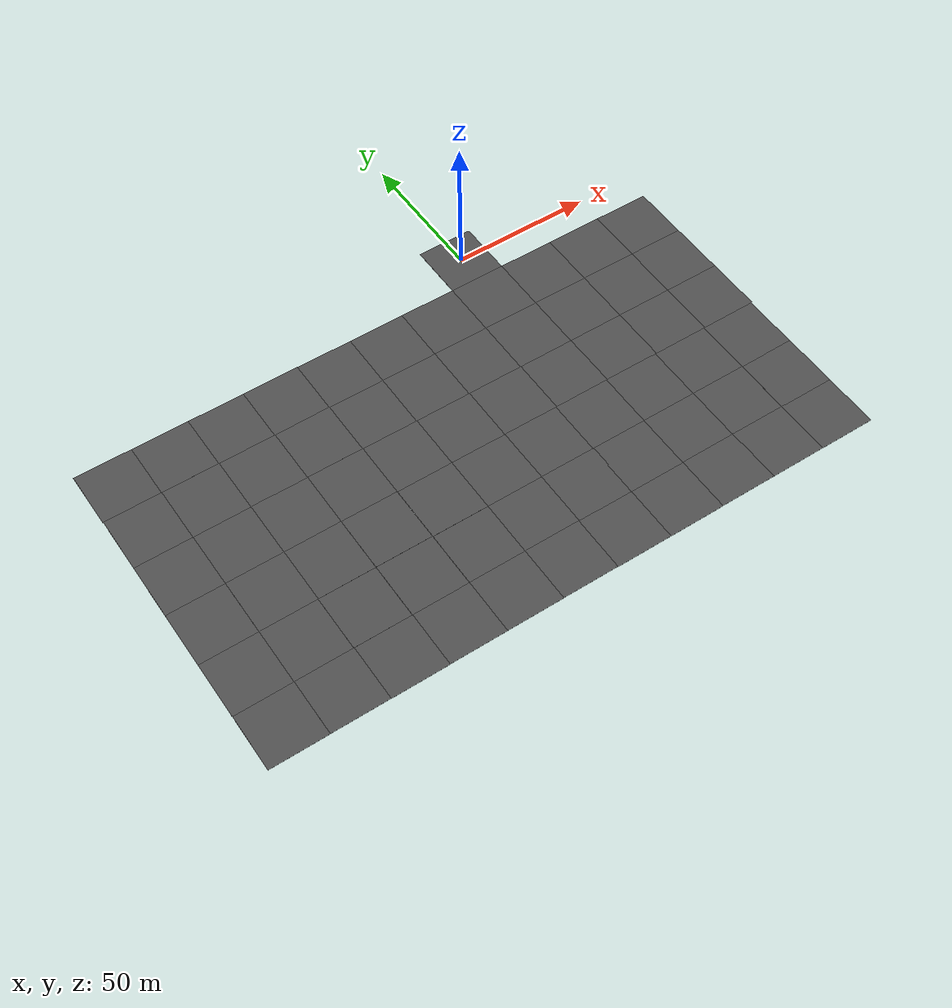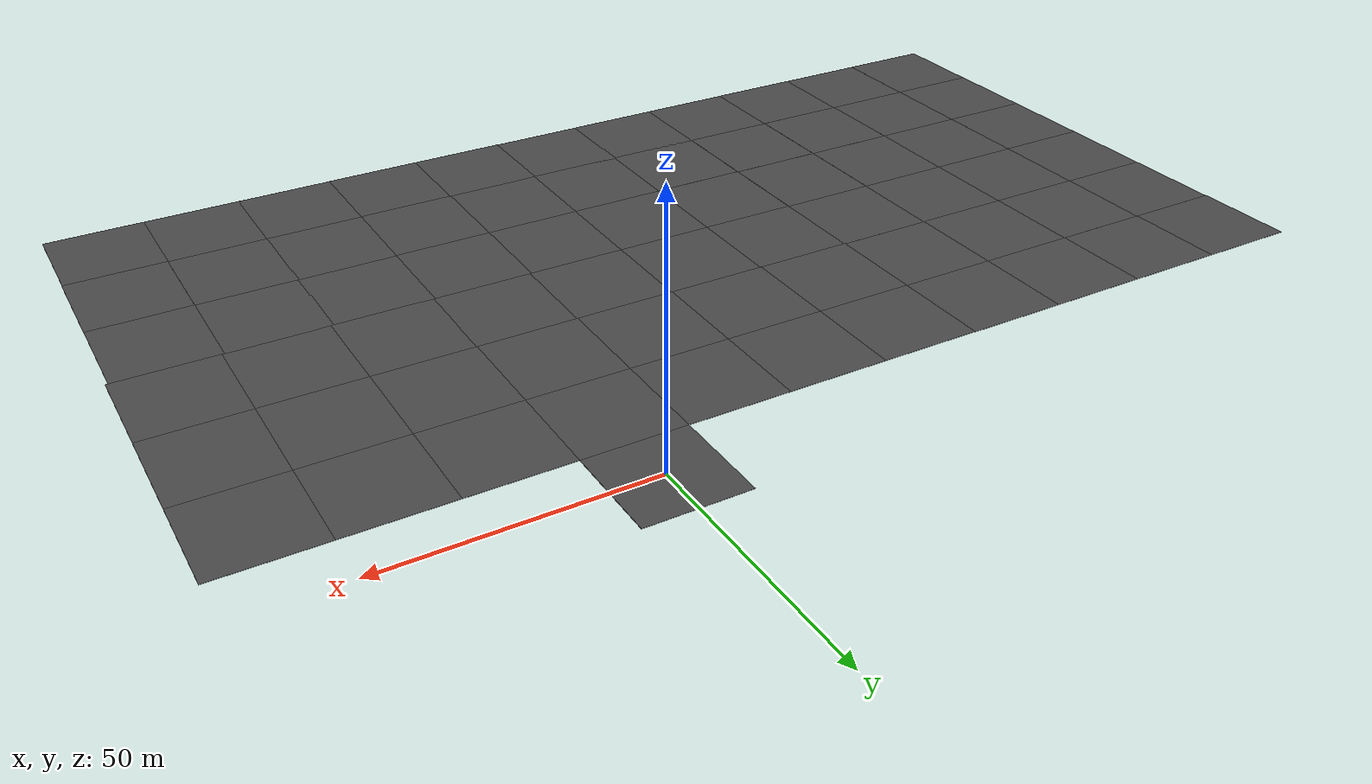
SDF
<sdf version="1.7">
 <world name="default">
  <model name="asphalt_plane">
   <static>1</static>
   <link name="link">
    <collision name="collision"><geometry><box><size>20 20 0.1</size></box></geometry></collision>
    <visual name="visual">
     <cast_shadows>0</cast_shadows>
     <geometry><box><size>20 20 0.1</size></box></geometry>
     <material>
      <script>
       <uri>model://asphalt_plane/materials/scripts</uri>
       <uri>model://asphalt_plane/materials/textures</uri>
       <name>vrc/asphalt</name>
      </script>
     </material>
    </visual>
   </link>
  </model>
  <model name="asphalt_plane_4">
   <static>1</static>
   <link name="link">
    <collision name="collision"><geometry><box><size>20 20 0.1</size></box></geometry></collision>
    <visual name="visual">
     <cast_shadows>0</cast_shadows>
     <geometry><box><size>20 20 0.1</size></box></geometry>
     <material>
      <script>
       <uri>model://asphalt_plane/materials/scripts</uri>
       <uri>model://asphalt_plane/materials/textures</uri>
       <name>vrc/asphalt</name>
      </script>
     </material>
    </visual>
   </link>
   <pose>0 -20 0 0 -0 0</pose>
  </model>
  <model name="asphalt_plane_5">
   <static>1</static>
   <link name="link">
    <collision name="collision"><geometry><box><size>20 20 0.1</size></box></geometry></collision>
    <visual name="visual">
     <cast_shadows>0</cast_shadows>
     <geometry><box><size>20 20 0.1</size></box></geometry>
     <material>
      <script>
       <uri>model://asphalt_plane/materials/scripts</uri>
       <uri>model://asphalt_plane/materials/textures</uri>
       <name>vrc/asphalt</name>
      </script>
     </material>
    </visual>
   </link>
   <pose>-20 -20 0 0 -0 0</pose>
  </model>
  <model name="asphalt_plane_6">
   <static>1</static>
   <link name="link">
    <collision name="collision"><geometry><box><size>20 20 0.1</size></box></geometry></collision>
    <visual name="visual">
     <cast_shadows>0</cast_shadows>
     <geometry><box><size>20 20 0.1</size></box></geometry>
     <material>
      <script>
       <uri>model://asphalt_plane/materials/scripts</uri>
       <uri>model://asphalt_plane/materials/textures</uri>
       <name>vrc/asphalt</name>
      </script>
     </material>
    </visual>
   </link>
   <pose>-40 -20 0 0 -0 0</pose>
  </model>
  <model name="asphalt_plane_7">
   <static>1</static>
   <link name="link">
    <collision name="collision"><geometry><box><size>20 20 0.1</size></box></geometry></collision>
    <visual name="visual">
     <cast_shadows>0</cast_shadows>
     <geometry><box><size>20 20 0.1</size></box></geometry>
     <material>
      <script>
       <uri>model://asphalt_plane/materials/scripts</uri>
       <uri>model://asphalt_plane/materials/textures</uri>
       <name>vrc/asphalt</name>
      </script>
     </material>
    </visual>
   </link>
   <pose>20 -20 0 0 -0 0</pose>
  </model>
  <model name="asphalt_plane_8">
   <static>1</static>
   <link name="link">
    <collision name="collision"><geometry><box><size>20 20 0.1</size></box></geometry></collision>
    <visual name="visual">
     <cast_shadows>0</cast_shadows>
     <geometry><box><size>20 20 0.1</size></box></geometry>
     <material>
      <script>
       <uri>model://asphalt_plane/materials/scripts</uri>
       <uri>model://asphalt_plane/materials/textures</uri>
       <name>vrc/asphalt</name>
      </script>
     </material>
    </visual>
   </link>
   <pose>40 -20 0 0 -0 0</pose>
  </model>
  <model name="asphalt_plane_16">
   <static>1</static>
   <link name="link">
    <collision name="collision"><geometry><box><size>20 20 0.1</size></box></geometry></collision>
    <visual name="visual">
     <cast_shadows>0</cast_shadows>
     <geometry><box><size>20 20 0.1</size></box></geometry>
     <material>
      <script>
       <uri>model://asphalt_plane/materials/scripts</uri>
       <uri>model://asphalt_plane/materials/textures</uri>
       <name>vrc/asphalt</name>
      </script>
     </material>
    </visual>
   </link>
   <pose>60 -20 0 0 -0 0</pose>
  </model>
  <model name="asphalt_plane_17">
   <static>1</static>
   <link name="link">
    <collision name="collision"><geometry><box><size>20 20 0.1</size></box></geometry></collision>
    <visual name="visual">
     <cast_shadows>0</cast_shadows>
     <geometry><box><size>20 20 0.1</size></box></geometry>
     <material>
      <script>
       <uri>model://asphalt_plane/materials/scripts</uri>
       <uri>model://asphalt_plane/materials/textures</uri>
       <name>vrc/asphalt</name>
      </script>
     </material>
    </visual>
   </link>
   <pose>40 -40 0 0 -0 0</pose>
  </model>
  <model name="asphalt_plane_18">
   <static>1</static>
   <link name="link">
    <collision name="collision"><geometry><box><size>20 20 0.1</size></box></geometry></collision>
    <visual name="visual">
     <cast_shadows>0</cast_shadows>
     <geometry><box><size>20 20 0.1</size></box></geometry>
     <material>
      <script>
       <uri>model://asphalt_plane/materials/scripts</uri>
       <uri>model://asphalt_plane/materials/textures</uri>
       <name>vrc/asphalt</name>
      </script>
     </material>
    </visual>
   </link>
   <pose>60 -40 0 0 -0 0</pose>
  </model>
  <model name="asphalt_plane_19">
   <static>1</static>
   <link name="link">
    <collision name="collision"><geometry><box><size>20 20 0.1</size></box></geometry></collision>
    <visual name="visual">
     <cast_shadows>0</cast_shadows>
     <geometry><box><size>20 20 0.1</size></box></geometry>
     <material>
      <script>
       <uri>model://asphalt_plane/materials/scripts</uri>
       <uri>model://asphalt_plane/materials/textures</uri>
       <name>vrc/asphalt</name>
      </script>
     </material>
    </visual>
   </link>
   <pose>20 -40 0 0 -0 0</pose>
  </model>
  <model name="asphalt_plane_20">
   <static>1</static>
   <link name="link">
    <collision name="collision"><geometry><box><size>20 20 0.1</size></box></geometry></collision>
    <visual name="visual">
     <cast_shadows>0</cast_shadows>
     <geometry><box><size>20 20 0.1</size></box></geometry>
     <material>
      <script>
       <uri>model://asphalt_plane/materials/scripts</uri>
       <uri>model://asphalt_plane/materials/textures</uri>
       <name>vrc/asphalt</name>
      </script>
     </material>
    </visual>
   </link>
   <pose>0 -40 0 0 -0 0</pose>
  </model>
  <model name="asphalt_plane_21">
   <static>1</static>
   <link name="link">
    <collision name="collision"><geometry><box><size>20 20 0.1</size></box></geometry></collision>
    <visual name="visual">
     <cast_shadows>0</cast_shadows>
     <geometry><box><size>20 20 0.1</size></box></geometry>
     <material>
      <script>
       <uri>model://asphalt_plane/materials/scripts</uri>
       <uri>model://asphalt_plane/materials/textures</uri>
       <name>vrc/asphalt</name>
      </script>
     </material>
    </visual>
   </link>
   <pose>-20 -40 0 0 -0 0</pose>
  </model>
  <model name="asphalt_plane_22">
   <static>1</static>
   <link name="link">
    <collision name="collision"><geometry><box><size>20 20 0.1</size></box></geometry></collision>
    <visual name="visual">
     <cast_shadows>0</cast_shadows>
     <geometry><box><size>20 20 0.1</size></box></geometry>
     <material>
      <script>
       <uri>model://asphalt_plane/materials/scripts</uri>
       <uri>model://asphalt_plane/materials/textures</uri>
       <name>vrc/asphalt</name>
      </script>
     </material>
    </visual>
   </link>
   <pose>-40 -40 0 0 -0 0</pose>
  </model>
  <model name="asphalt_plane_23">
   <static>1</static>
   <link name="link">
    <collision name="collision"><geometry><box><size>20 20 0.1</size></box></geometry></collision>
    <visual name="visual">
     <cast_shadows>0</cast_shadows>
     <geometry><box><size>20 20 0.1</size></box></geometry>
     <material>
      <script>
       <uri>model://asphalt_plane/materials/scripts</uri>
       <uri>model://asphalt_plane/materials/textures</uri>
       <name>vrc/asphalt</name>
      </script>
     </material>
    </visual>
   </link>
   <pose>-60 -40 0 0 -0 0</pose>
  </model>
  <model name="asphalt_plane_24">
   <static>1</static>
   <link name="link">
    <collision name="collision"><geometry><box><size>20 20 0.1</size></box></geometry></collision>
    <visual name="visual">
     <cast_shadows>0</cast_shadows>
     <geometry><box><size>20 20 0.1</size></box></geometry>
     <material>
      <script>
       <uri>model://asphalt_plane/materials/scripts</uri>
       <uri>model://asphalt_plane/materials/textures</uri>
       <name>vrc/asphalt</name>
      </script>
     </material>
    </visual>
   </link>
   <pose>-60 -20 0 0 -0 0</pose>
  </model>
  <model name="asphalt_plane_18_clone">
   <static>1</static>
   <link name="link">
    <collision name="collision"><geometry><box><size>20 20 0.1</size></box></geometry></collision>
    <visual name="visual">
     <cast_shadows>0</cast_shadows>
     <geometry><box><size>20 20 0.1</size></box></geometry>
     <material>
      <script>
       <uri>model://asphalt_plane/materials/scripts</uri>
       <uri>model://asphalt_plane/materials/textures</uri>
       <name>vrc/asphalt</name>
      </script>
     </material>
    </visual>
   </link>
   <pose>59.9964 -59.9875 0 0 -0 0</pose>
  </model>
  <model name="asphalt_plane_23_clone">
   <static>1</static>
   <link name="link">
    <collision name="collision"><geometry><box><size>20 20 0.1</size></box></geometry></collision>
    <visual name="visual">
     <cast_shadows>0</cast_shadows>
     <geometry><box><size>20 20 0.1</size></box></geometry>
     <material>
      <script>
       <uri>model://asphalt_plane/materials/scripts</uri>
       <uri>model://asphalt_plane/materials/textures</uri>
       <name>vrc/asphalt</name>
      </script>
     </material>
    </visual>
   </link>
   <pose>40.0178 -59.9822 0 0 -0 0</pose>
  </model>
  <model name="asphalt_plane_23_clone_0">
   <static>1</static>
   <link name="link">
    <collision name="collision"><geometry><box><size>20 20 0.1</size></box></geometry></collision>
    <visual name="visual">
     <cast_shadows>0</cast_shadows>
     <geometry><box><size>20 20 0.1</size></box></geometry>
     <material>
      <script>
       <uri>model://asphalt_plane/materials/scripts</uri>
       <uri>model://asphalt_plane/materials/textures</uri>
       <name>vrc/asphalt</name>
      </script>
     </material>
    </visual>
   </link>
   <pose>20.0657 -59.997 0 0 -0 0</pose>
  </model>
  <model name="asphalt_plane_27_clone_1_clone_1_clone_clone_2">
   <static>1</static>
   <link name="link">
    <collision name="collision"><geometry><box><size>20 20 0.1</size></box></geometry></collision>
    <visual name="visual">
     <cast_shadows>0</cast_shadows>
     <geometry><box><size>20 20 0.1</size></box></geometry>
     <material>
      <script>
       <uri>model://asphalt_plane/materials/scripts</uri>
       <uri>model://asphalt_plane/materials/textures</uri>
       <name>vrc/asphalt</name>
      </script>
     </material>
    </visual>
   </link>
   <pose>-139.882 -19.9008 0 0 -0 0</pose>
  </model>
  <model name="asphalt_plane_27_clone_1_clone_1_clone_clone_3">
   <static>1</static>
   <link name="link">
    <collision name="collision"><geometry><box><size>20 20 0.1</size></box></geometry></collision>
    <visual name="visual">
     <cast_shadows>0</cast_shadows>
     <geometry><box><size>20 20 0.1</size></box></geometry>
     <material>
      <script>
       <uri>model://asphalt_plane/materials/scripts</uri>
       <uri>model://asphalt_plane/materials/textures</uri>
       <name>vrc/asphalt</name>
      </script>
     </material>
    </visual>
   </link>
   <pose>-119.902 -19.9114 0 0 -0 0</pose>
  </model>
  <model name="asphalt_plane_27_clone_1_clone_1_clone_clone_4">
   <static>1</static>
   <link name="link">
    <collision name="collision"><geometry><box><size>20 20 0.1</size></box></geometry></collision>
    <visual name="visual">
     <cast_shadows>0</cast_shadows>
     <geometry><box><size>20 20 0.1</size></box></geometry>
     <material>
      <script>
       <uri>model://asphalt_plane/materials/scripts</uri>
       <uri>model://asphalt_plane/materials/textures</uri>
       <name>vrc/asphalt</name>
      </script>
     </material>
    </visual>
   </link>
   <pose>-99.9041 -19.9218 0 0 -0 0</pose>
  </model>
  <model name="asphalt_plane_27_clone_1_clone_1_clone_clone_7">
   <static>1</static>
   <link name="link">
    <collision name="collision"><geometry><box><size>20 20 0.1</size></box></geometry></collision>
    <visual name="visual">
     <cast_shadows>0</cast_shadows>
     <geometry><box><size>20 20 0.1</size></box></geometry>
     <material>
      <script>
       <uri>model://asphalt_plane/materials/scripts</uri>
       <uri>model://asphalt_plane/materials/textures</uri>
       <name>vrc/asphalt</name>
      </script>
     </material>
    </visual>
   </link>
   <pose>-79.9947 -19.9094 0 0 -0 0</pose>
  </model>
  <model name="asphalt_plane_27_clone_1_clone_1_clone_clone_9">
   <static>1</static>
   <link name="link">
    <collision name="collision"><geometry><box><size>20 20 0.1</size></box></geometry></collision>
    <visual name="visual">
     <cast_shadows>0</cast_shadows>
     <geometry><box><size>20 20 0.1</size></box></geometry>
     <material>
      <script>
       <uri>model://asphalt_plane/materials/scripts</uri>
       <uri>model://asphalt_plane/materials/textures</uri>
       <name>vrc/asphalt</name>
      </script>
     </material>
    </visual>
   </link>
   <pose>-79.8891 -39.8116 0 0 -0 0</pose>
  </model>
  <model name="asphalt_plane_27_clone_1_clone_1_clone_clone_10">
   <static>1</static>
   <link name="link">
    <collision name="collision"><geometry><box><size>20 20 0.1</size></box></geometry></collision>
    <visual name="visual">
     <cast_shadows>0</cast_shadows>
     <geometry><box><size>20 20 0.1</size></box></geometry>
     <material>
      <script>
       <uri>model://asphalt_plane/materials/scripts</uri>
       <uri>model://asphalt_plane/materials/textures</uri>
       <name>vrc/asphalt</name>
      </script>
     </material>
    </visual>
   </link>
   <pose>-99.7977 -39.9115 0 0 -0 0</pose>
  </model>
  <model name="asphalt_plane_27_clone_1_clone_1_clone_clone_11">
   <static>1</static>
   <link name="link">
    <collision name="collision"><geometry><box><size>20 20 0.1</size></box></geometry></collision>
    <visual name="visual">
     <cast_shadows>0</cast_shadows>
     <geometry><box><size>20 20 0.1</size></box></geometry>
     <material>
      <script>
       <uri>model://asphalt_plane/materials/scripts</uri>
       <uri>model://asphalt_plane/materials/textures</uri>
       <name>vrc/asphalt</name>
      </script>
     </material>
    </visual>
   </link>
   <pose>-119.778 -39.9212 0 0 -0 0</pose>
  </model>
  <model name="asphalt_plane_27_clone_1_clone_1_clone_clone_12">
   <static>1</static>
   <link name="link">
    <collision name="collision"><geometry><box><size>20 20 0.1</size></box></geometry></collision>
    <visual name="visual">
     <cast_shadows>0</cast_shadows>
     <geometry><box><size>20 20 0.1</size></box></geometry>
     <material>
      <script>
       <uri>model://asphalt_plane/materials/scripts</uri>
       <uri>model://asphalt_plane/materials/textures</uri>
       <name>vrc/asphalt</name>
      </script>
     </material>
    </visual>
   </link>
   <pose>-139.697 -39.9019 0 0 -0 0</pose>
  </model>
  <model name="asphalt_plane_27_clone_1_clone_1_clone_clone_2_clone">
   <static>1</static>
   <link name="link">
    <collision name="collision"><geometry><box><size>20 20 0.1</size></box></geometry></collision>
    <visual name="visual">
     <cast_shadows>0</cast_shadows>
     <geometry><box><size>20 20 0.1</size></box></geometry>
     <material>
      <script>
       <uri>model://asphalt_plane/materials/scripts</uri>
       <uri>model://asphalt_plane/materials/textures</uri>
       <name>vrc/asphalt</name>
      </script>
     </material>
    </visual>
   </link>
   <pose>0.157661 -59.9598 0 0 -0 0</pose>
  </model>
  <model name="asphalt_plane_27_clone_1_clone_1_clone_clone_2_clone_0">
   <static>1</static>
   <link name="link">
    <collision name="collision"><geometry><box><size>20 20 0.1</size></box></geometry></collision>
    <visual name="visual">
     <cast_shadows>0</cast_shadows>
     <geometry><box><size>20 20 0.1</size></box></geometry>
     <material>
      <script>
       <uri>model://asphalt_plane/materials/scripts</uri>
       <uri>model://asphalt_plane/materials/textures</uri>
       <name>vrc/asphalt</name>
      </script>
     </material>
    </visual>
   </link>
   <pose>-19.8396 -59.9622 0 0 -0 0</pose>
  </model>
  <model name="asphalt_plane_27_clone_1_clone_1_clone_clone_2_clone_1">
   <static>1</static>
   <link name="link">
    <collision name="collision"><geometry><box><size>20 20 0.1</size></box></geometry></collision>
    <visual name="visual">
     <cast_shadows>0</cast_shadows>
     <geometry><box><size>20 20 0.1</size></box></geometry>
     <material>
      <script>
       <uri>model://asphalt_plane/materials/scripts</uri>
       <uri>model://asphalt_plane/materials/textures</uri>
       <name>vrc/asphalt</name>
      </script>
     </material>
    </visual>
   </link>
   <pose>-39.7931 -59.9957 0 0 -0 0</pose>
  </model>
  <model name="asphalt_plane_27_clone_1_clone_1_clone_clone_2_clone_2">
   <static>1</static>
   <link name="link">
    <collision name="collision"><geometry><box><size>20 20 0.1</size></box></geometry></collision>
    <visual name="visual">
     <cast_shadows>0</cast_shadows>
     <geometry><box><size>20 20 0.1</size></box></geometry>
     <material>
      <script>
       <uri>model://asphalt_plane/materials/scripts</uri>
       <uri>model://asphalt_plane/materials/textures</uri>
       <name>vrc/asphalt</name>
      </script>
     </material>
    </visual>
   </link>
   <pose>-59.7618 -59.9573 0 0 -0 0</pose>
  </model>
  <model name="asphalt_plane_27_clone_1_clone_1_clone_clone_2_clone_3">
   <static>1</static>
   <link name="link">
    <collision name="collision"><geometry><box><size>20 20 0.1</size></box></geometry></collision>
    <visual name="visual">
     <cast_shadows>0</cast_shadows>
     <geometry><box><size>20 20 0.1</size></box></geometry>
     <material>
      <script>
       <uri>model://asphalt_plane/materials/scripts</uri>
       <uri>model://asphalt_plane/materials/textures</uri>
       <name>vrc/asphalt</name>
      </script>
     </material>
    </visual>
   </link>
   <pose>-59.7385 -79.9238 0 0 -0 0</pose>
  </model>
  <model name="asphalt_plane_27_clone_1_clone_1_clone_clone_2_clone_4">
   <static>1</static>
   <link name="link">
    <collision name="collision"><geometry><box><size>20 20 0.1</size></box></geometry></collision>
    <visual name="visual">
     <cast_shadows>0</cast_shadows>
     <geometry><box><size>20 20 0.1</size></box></geometry>
     <material>
      <script>
       <uri>model://asphalt_plane/materials/scripts</uri>
       <uri>model://asphalt_plane/materials/textures</uri>
       <name>vrc/asphalt</name>
      </script>
     </material>
    </visual>
   </link>
   <pose>-39.7511 -79.9418 0 0 -0 0</pose>
  </model>
  <model name="asphalt_plane_27_clone_1_clone_1_clone_clone_2_clone_5">
   <static>1</static>
   <link name="link">
    <collision name="collision"><geometry><box><size>20 20 0.1</size></box></geometry></collision>
    <visual name="visual">
     <cast_shadows>0</cast_shadows>
     <geometry><box><size>20 20 0.1</size></box></geometry>
     <material>
      <script>
       <uri>model://asphalt_plane/materials/scripts</uri>
       <uri>model://asphalt_plane/materials/textures</uri>
       <name>vrc/asphalt</name>
      </script>
     </material>
    </visual>
   </link>
   <pose>-19.798 -79.9135 0 0 -0 0</pose>
  </model>
  <model name="asphalt_plane_27_clone_1_clone_1_clone_clone_2_clone_6">
   <static>1</static>
   <link name="link">
    <collision name="collision"><geometry><box><size>20 20 0.1</size></box></geometry></collision>
    <visual name="visual">
     <cast_shadows>0</cast_shadows>
     <geometry><box><size>20 20 0.1</size></box></geometry>
     <material>
      <script>
       <uri>model://asphalt_plane/materials/scripts</uri>
       <uri>model://asphalt_plane/materials/textures</uri>
       <name>vrc/asphalt</name>
      </script>
     </material>
    </visual>
   </link>
   <pose>-0.179278 -79.9081 0 0 -0 0</pose>
  </model>
  <model name="asphalt_plane_27_clone_1_clone_1_clone_clone_2_clone_7">
   <static>1</static>
   <link name="link">
    <collision name="collision"><geometry><box><size>20 20 0.1</size></box></geometry></collision>
    <visual name="visual">
     <cast_shadows>0</cast_shadows>
     <geometry><box><size>20 20 0.1</size></box></geometry>
     <material>
      <script>
       <uri>model://asphalt_plane/materials/scripts</uri>
       <uri>model://asphalt_plane/materials/textures</uri>
       <name>vrc/asphalt</name>
      </script>
     </material>
    </visual>
   </link>
   <pose>-59.7435 -99.9572 0 0 -0 0</pose>
  </model>
  <model name="asphalt_plane_27_clone_1_clone_1_clone_clone_2_clone_8">
   <static>1</static>
   <link name="link">
    <collision name="collision"><geometry><box><size>20 20 0.1</size></box></geometry></collision>
    <visual name="visual">
     <cast_shadows>0</cast_shadows>
     <geometry><box><size>20 20 0.1</size></box></geometry>
     <material>
      <script>
       <uri>model://asphalt_plane/materials/scripts</uri>
       <uri>model://asphalt_plane/materials/textures</uri>
       <name>vrc/asphalt</name>
      </script>
     </material>
    </visual>
   </link>
   <pose>-39.7903 -99.9163 0 0 -0 0</pose>
  </model>
  <model name="asphalt_plane_27_clone_1_clone_1_clone_clone_2_clone_9">
   <static>1</static>
   <link name="link">
    <collision name="collision"><geometry><box><size>20 20 0.1</size></box></geometry></collision>
    <visual name="visual">
     <cast_shadows>0</cast_shadows>
     <geometry><box><size>20 20 0.1</size></box></geometry>
     <material>
      <script>
       <uri>model://asphalt_plane/materials/scripts</uri>
       <uri>model://asphalt_plane/materials/textures</uri>
       <name>vrc/asphalt</name>
      </script>
     </material>
    </visual>
   </link>
   <pose>-19.8411 -99.8531 0 0 -0 0</pose>
  </model>
  <model name="asphalt_plane_27_clone_1_clone_1_clone_clone_2_clone_10">
   <static>1</static>
   <link name="link">
    <collision name="collision"><geometry><box><size>20 20 0.1</size></box></geometry></collision>
    <visual name="visual">
     <cast_shadows>0</cast_shadows>
     <geometry><box><size>20 20 0.1</size></box></geometry>
     <material>
      <script>
       <uri>model://asphalt_plane/materials/scripts</uri>
       <uri>model://asphalt_plane/materials/textures</uri>
       <name>vrc/asphalt</name>
      </script>
     </material>
    </visual>
   </link>
   <pose>-0.180116 -99.8911 0 0 -0 0</pose>
  </model>
  <model name="asphalt_plane_27_clone_1_clone_1_clone_clone_2_clone_8_clone">
   <static>1</static>
   <link name="link">
    <collision name="collision"><geometry><box><size>20 20 0.1</size></box></geometry></collision>
    <visual name="visual">
     <cast_shadows>0</cast_shadows>
     <geometry><box><size>20 20 0.1</size></box></geometry>
     <material>
      <script>
       <uri>model://asphalt_plane/materials/scripts</uri>
       <uri>model://asphalt_plane/materials/textures</uri>
       <name>vrc/asphalt</name>
      </script>
     </material>
    </visual>
   </link>
   <pose>-0.167839 -119.783 0 0 -0 0</pose>
  </model>
  <model name="asphalt_plane_27_clone_1_clone_1_clone_clone_2_clone_8_clone_0">
   <static>1</static>
   <link name="link">
    <collision name="collision"><geometry><box><size>20 20 0.1</size></box></geometry></collision>
    <visual name="visual">
     <cast_shadows>0</cast_shadows>
     <geometry><box><size>20 20 0.1</size></box></geometry>
     <material>
      <script>
       <uri>model://asphalt_plane/materials/scripts</uri>
       <uri>model://asphalt_plane/materials/textures</uri>
       <name>vrc/asphalt</name>
      </script>
     </material>
    </visual>
   </link>
   <pose>-20.0015 -119.752 0 0 -0 0</pose>
  </model>
  <model name="asphalt_plane_27_clone_1_clone_1_clone_clone_2_clone_8_clone_1">
   <static>1</static>
   <link name="link">
    <collision name="collision"><geometry><box><size>20 20 0.1</size></box></geometry></collision>
    <visual name="visual">
     <cast_shadows>0</cast_shadows>
     <geometry><box><size>20 20 0.1</size></box></geometry>
     <material>
      <script>
       <uri>model://asphalt_plane/materials/scripts</uri>
       <uri>model://asphalt_plane/materials/textures</uri>
       <name>vrc/asphalt</name>
      </script>
     </material>
    </visual>
   </link>
   <pose>19.8184 -119.711 0 0 -0 0</pose>
  </model>
  <model name="asphalt_plane_27_clone_1_clone_1_clone_clone_2_clone_8_clone_2">
   <static>1</static>
   <link name="link">
    <collision name="collision"><geometry><box><size>20 20 0.1</size></box></geometry></collision>
    <visual name="visual">
     <cast_shadows>0</cast_shadows>
     <geometry><box><size>20 20 0.1</size></box></geometry>
     <material>
      <script>
       <uri>model://asphalt_plane/materials/scripts</uri>
       <uri>model://asphalt_plane/materials/textures</uri>
       <name>vrc/asphalt</name>
      </script>
     </material>
    </visual>
   </link>
   <pose>39.4937 -119.729 0 0 -0 0</pose>
  </model>
  <model name="asphalt_plane_27_clone_1_clone_1_clone_clone_2_clone_8_clone_3">
   <static>1</static>
   <link name="link">
    <collision name="collision"><geometry><box><size>20 20 0.1</size></box></geometry></collision>
    <visual name="visual">
     <cast_shadows>0</cast_shadows>
     <geometry><box><size>20 20 0.1</size></box></geometry>
     <material>
      <script>
       <uri>model://asphalt_plane/materials/scripts</uri>
       <uri>model://asphalt_plane/materials/textures</uri>
       <name>vrc/asphalt</name>
      </script>
     </material>
    </visual>
   </link>
   <pose>39.5335 -99.8232 0 0 -0 0</pose>
  </model>
  <model name="asphalt_plane_27_clone_1_clone_1_clone_clone_2_clone_8_clone_4">
   <static>1</static>
   <link name="link">
    <collision name="collision"><geometry><box><size>20 20 0.1</size></box></geometry></collision>
    <visual name="visual">
     <cast_shadows>0</cast_shadows>
     <geometry><box><size>20 20 0.1</size></box></geometry>
     <material>
      <script>
       <uri>model://asphalt_plane/materials/scripts</uri>
       <uri>model://asphalt_plane/materials/textures</uri>
       <name>vrc/asphalt</name>
      </script>
     </material>
    </visual>
   </link>
   <pose>39.5169 -79.8384 0 0 -0 0</pose>
  </model>
  <model name="asphalt_plane_27_clone_1_clone_1_clone_clone_2_clone_6_clone">
   <static>1</static>
   <link name="link">
    <collision name="collision"><geometry><box><size>20 20 0.1</size></box></geometry></collision>
    <visual name="visual">
     <cast_shadows>0</cast_shadows>
     <geometry><box><size>20 20 0.1</size></box></geometry>
     <material>
      <script>
       <uri>model://asphalt_plane/materials/scripts</uri>
       <uri>model://asphalt_plane/materials/textures</uri>
       <name>vrc/asphalt</name>
      </script>
     </material>
    </visual>
   </link>
   <pose>19.7872 -79.8658 0 0 -0 0</pose>
  </model>
  <model name="asphalt_plane_27_clone_1_clone_1_clone_clone_2_clone_6_clone_0">
   <static>1</static>
   <link name="link">
    <collision name="collision"><geometry><box><size>20 20 0.1</size></box></geometry></collision>
    <visual name="visual">
     <cast_shadows>0</cast_shadows>
     <geometry><box><size>20 20 0.1</size></box></geometry>
     <material>
      <script>
       <uri>model://asphalt_plane/materials/scripts</uri>
       <uri>model://asphalt_plane/materials/textures</uri>
       <name>vrc/asphalt</name>
      </script>
     </material>
    </visual>
   </link>
   <pose>19.7298 -99.7364 0 0 -0 0</pose>
  </model>
  <model name="asphalt_plane_27_clone_1_clone_1_clone_clone_2_clone_8_clone_4_clone">
   <static>1</static>
   <link name="link">
    <collision name="collision"><geometry><box><size>20 20 0.1</size></box></geometry></collision>
    <visual name="visual">
     <cast_shadows>0</cast_shadows>
     <geometry><box><size>20 20 0.1</size></box></geometry>
     <material>
      <script>
       <uri>model://asphalt_plane/materials/scripts</uri>
       <uri>model://asphalt_plane/materials/textures</uri>
       <name>vrc/asphalt</name>
      </script>
     </material>
    </visual>
   </link>
   <pose>59.5081 -79.9807 0 0 -0 0</pose>
  </model>
  <model name="asphalt_plane_27_clone_1_clone_1_clone_clone_2_clone_8_clone_4_clone_0">
   <static>1</static>
   <link name="link">
    <collision name="collision"><geometry><box><size>20 20 0.1</size></box></geometry></collision>
    <visual name="visual">
     <cast_shadows>0</cast_shadows>
     <geometry><box><size>20 20 0.1</size></box></geometry>
     <material>
      <script>
       <uri>model://asphalt_plane/materials/scripts</uri>
       <uri>model://asphalt_plane/materials/textures</uri>
       <name>vrc/asphalt</name>
      </script>
     </material>
    </visual>
   </link>
   <pose>59.5374 -99.8818 0 0 -0 0</pose>
  </model>
  <model name="asphalt_plane_27_clone_1_clone_1_clone_clone_2_clone_8_clone_4_clone_1">
   <static>1</static>
   <link name="link">
    <collision name="collision"><geometry><box><size>20 20 0.1</size></box></geometry></collision>
    <visual name="visual">
     <cast_shadows>0</cast_shadows>
     <geometry><box><size>20 20 0.1</size></box></geometry>
     <material>
      <script>
       <uri>model://asphalt_plane/materials/scripts</uri>
       <uri>model://asphalt_plane/materials/textures</uri>
       <name>vrc/asphalt</name>
      </script>
     </material>
    </visual>
   </link>
   <pose>59.4523 -119.769 0 0 -0 0</pose>
  </model>
  <model name="asphalt_plane_27_clone_10_clone_5">
   <static>1</static>
   <link name="link">
    <collision name="collision"><geometry><box><size>20 20 0.1</size></box></geometry></collision>
    <visual name="visual">
     <cast_shadows>0</cast_shadows>
     <geometry><box><size>20 20 0.1</size></box></geometry>
     <material>
      <script>
       <uri>model://asphalt_plane/materials/scripts</uri>
       <uri>model://asphalt_plane/materials/textures</uri>
       <name>vrc/asphalt</name>
      </script>
     </material>
    </visual>
   </link>
   <pose>-139.711 -59.8487 0 0 -0 0</pose>
  </model>
  <model name="asphalt_plane_27_clone_10_clone_6">
   <static>1</static>
   <link name="link">
    <collision name="collision"><geometry><box><size>20 20 0.1</size></box></geometry></collision>
    <visual name="visual">
     <cast_shadows>0</cast_shadows>
     <geometry><box><size>20 20 0.1</size></box></geometry>
     <material>
      <script>
       <uri>model://asphalt_plane/materials/scripts</uri>
       <uri>model://asphalt_plane/materials/textures</uri>
       <name>vrc/asphalt</name>
      </script>
     </material>
    </visual>
   </link>
   <pose>-119.717 -59.8116 0 0 -0 0</pose>
  </model>
  <model name="asphalt_plane_27_clone_10_clone_7">
   <static>1</static>
   <link name="link">
    <collision name="collision"><geometry><box><size>20 20 0.1</size></box></geometry></collision>
    <visual name="visual">
     <cast_shadows>0</cast_shadows>
     <geometry><box><size>20 20 0.1</size></box></geometry>
     <material>
      <script>
       <uri>model://asphalt_plane/materials/scripts</uri>
       <uri>model://asphalt_plane/materials/textures</uri>
       <name>vrc/asphalt</name>
      </script>
     </material>
    </visual>
   </link>
   <pose>-99.7392 -59.7769 0 0 -0 0</pose>
  </model>
  <model name="asphalt_plane_27_clone_10_clone_8">
   <static>1</static>
   <link name="link">
    <collision name="collision"><geometry><box><size>20 20 0.1</size></box></geometry></collision>
    <visual name="visual">
     <cast_shadows>0</cast_shadows>
     <geometry><box><size>20 20 0.1</size></box></geometry>
     <material>
      <script>
       <uri>model://asphalt_plane/materials/scripts</uri>
       <uri>model://asphalt_plane/materials/textures</uri>
       <name>vrc/asphalt</name>
      </script>
     </material>
    </visual>
   </link>
   <pose>-79.7614 -59.8213 0 0 -0 0</pose>
  </model>
  <model name="asphalt_plane_27_clone_10_clone_9">
   <static>1</static>
   <link name="link">
    <collision name="collision"><geometry><box><size>20 20 0.1</size></box></geometry></collision>
    <visual name="visual">
     <cast_shadows>0</cast_shadows>
     <geometry><box><size>20 20 0.1</size></box></geometry>
     <material>
      <script>
       <uri>model://asphalt_plane/materials/scripts</uri>
       <uri>model://asphalt_plane/materials/textures</uri>
       <name>vrc/asphalt</name>
      </script>
     </material>
    </visual>
   </link>
   <pose>-139.708 -79.8247 0 0 -0 0</pose>
  </model>
  <model name="asphalt_plane_27_clone_10_clone_10">
   <static>1</static>
   <link name="link">
    <collision name="collision"><geometry><box><size>20 20 0.1</size></box></geometry></collision>
    <visual name="visual">
     <cast_shadows>0</cast_shadows>
     <geometry><box><size>20 20 0.1</size></box></geometry>
     <material>
      <script>
       <uri>model://asphalt_plane/materials/scripts</uri>
       <uri>model://asphalt_plane/materials/textures</uri>
       <name>vrc/asphalt</name>
      </script>
     </material>
    </visual>
   </link>
   <pose>-119.7 -79.7731 0 0 -0 0</pose>
  </model>
  <model name="asphalt_plane_27_clone_10_clone_11">
   <static>1</static>
   <link name="link">
    <collision name="collision"><geometry><box><size>20 20 0.1</size></box></geometry></collision>
    <visual name="visual">
     <cast_shadows>0</cast_shadows>
     <geometry><box><size>20 20 0.1</size></box></geometry>
     <material>
      <script>
       <uri>model://asphalt_plane/materials/scripts</uri>
       <uri>model://asphalt_plane/materials/textures</uri>
       <name>vrc/asphalt</name>
      </script>
     </material>
    </visual>
   </link>
   <pose>-99.8038 -79.7515 0 0 -0 0</pose>
  </model>
  <model name="asphalt_plane_27_clone_10_clone_12">
   <static>1</static>
   <link name="link">
    <collision name="collision"><geometry><box><size>20 20 0.1</size></box></geometry></collision>
    <visual name="visual">
     <cast_shadows>0</cast_shadows>
     <geometry><box><size>20 20 0.1</size></box></geometry>
     <material>
      <script>
       <uri>model://asphalt_plane/materials/scripts</uri>
       <uri>model://asphalt_plane/materials/textures</uri>
       <name>vrc/asphalt</name>
      </script>
     </material>
    </visual>
   </link>
   <pose>-79.7848 -79.7504 0 0 -0 0</pose>
  </model>
  <model name="asphalt_plane_27_clone_10_clone_13">
   <static>1</static>
   <link name="link">
    <collision name="collision"><geometry><box><size>20 20 0.1</size></box></geometry></collision>
    <visual name="visual">
     <cast_shadows>0</cast_shadows>
     <geometry><box><size>20 20 0.1</size></box></geometry>
     <material>
      <script>
       <uri>model://asphalt_plane/materials/scripts</uri>
       <uri>model://asphalt_plane/materials/textures</uri>
       <name>vrc/asphalt</name>
      </script>
     </material>
    </visual>
   </link>
   <pose>-139.675 -99.8004 0 0 -0 0</pose>
  </model>
  <model name="asphalt_plane_27_clone_10_clone_14">
   <static>1</static>
   <link name="link">
    <collision name="collision"><geometry><box><size>20 20 0.1</size></box></geometry></collision>
    <visual name="visual">
     <cast_shadows>0</cast_shadows>
     <geometry><box><size>20 20 0.1</size></box></geometry>
     <material>
      <script>
       <uri>model://asphalt_plane/materials/scripts</uri>
       <uri>model://asphalt_plane/materials/textures</uri>
       <name>vrc/asphalt</name>
      </script>
     </material>
    </visual>
   </link>
   <pose>-119.815 -99.7486 0 0 -0 0</pose>
  </model>
  <model name="asphalt_plane_27_clone_10_clone_15">
   <static>1</static>
   <link name="link">
    <collision name="collision"><geometry><box><size>20 20 0.1</size></box></geometry></collision>
    <visual name="visual">
     <cast_shadows>0</cast_shadows>
     <geometry><box><size>20 20 0.1</size></box></geometry>
     <material>
      <script>
       <uri>model://asphalt_plane/materials/scripts</uri>
       <uri>model://asphalt_plane/materials/textures</uri>
       <name>vrc/asphalt</name>
      </script>
     </material>
    </visual>
   </link>
   <pose>-99.8062 -99.77 0 0 -0 0</pose>
  </model>
  <model name="asphalt_plane_27_clone_10_clone_16">
   <static>1</static>
   <link name="link">
    <collision name="collision"><geometry><box><size>20 20 0.1</size></box></geometry></collision>
    <visual name="visual">
     <cast_shadows>0</cast_shadows>
     <geometry><box><size>20 20 0.1</size></box></geometry>
     <material>
      <script>
       <uri>model://asphalt_plane/materials/scripts</uri>
       <uri>model://asphalt_plane/materials/textures</uri>
       <name>vrc/asphalt</name>
      </script>
     </material>
    </visual>
   </link>
   <pose>-79.777 -99.7785 0 0 -0 0</pose>
  </model>
  <model name="asphalt_plane_27_clone_10_clone_17">
   <static>1</static>
   <link name="link">
    <collision name="collision"><geometry><box><size>20 20 0.1</size></box></geometry></collision>
    <visual name="visual">
     <cast_shadows>0</cast_shadows>
     <geometry><box><size>20 20 0.1</size></box></geometry>
     <material>
      <script>
       <uri>model://asphalt_plane/materials/scripts</uri>
       <uri>model://asphalt_plane/materials/textures</uri>
       <name>vrc/asphalt</name>
      </script>
     </material>
    </visual>
   </link>
   <pose>-139.607 -119.768 0 0 -0 0</pose>
  </model>
  <model name="asphalt_plane_27_clone_10_clone_18">
   <static>1</static>
   <link name="link">
    <collision name="collision"><geometry><box><size>20 20 0.1</size></box></geometry></collision>
    <visual name="visual">
     <cast_shadows>0</cast_shadows>
     <geometry><box><size>20 20 0.1</size></box></geometry>
     <material>
      <script>
       <uri>model://asphalt_plane/materials/scripts</uri>
       <uri>model://asphalt_plane/materials/textures</uri>
       <name>vrc/asphalt</name>
      </script>
     </material>
    </visual>
   </link>
   <pose>-119.603 -119.724 0 0 -0 0</pose>
  </model>
  <model name="asphalt_plane_27_clone_10_clone_19">
   <static>1</static>
   <link name="link">
    <collision name="collision"><geometry><box><size>20 20 0.1</size></box></geometry></collision>
    <visual name="visual">
     <cast_shadows>0</cast_shadows>
     <geometry><box><size>20 20 0.1</size></box></geometry>
     <material>
      <script>
       <uri>model://asphalt_plane/materials/scripts</uri>
       <uri>model://asphalt_plane/materials/textures</uri>
       <name>vrc/asphalt</name>
      </script>
     </material>
    </visual>
   </link>
   <pose>-99.6831 -119.78 0 0 -0 0</pose>
  </model>
  <model name="asphalt_plane_27_clone_10_clone_20">
   <static>1</static>
   <link name="link">
    <collision name="collision"><geometry><box><size>20 20 0.1</size></box></geometry></collision>
    <visual name="visual">
     <cast_shadows>0</cast_shadows>
     <geometry><box><size>20 20 0.1</size></box></geometry>
     <material>
      <script>
       <uri>model://asphalt_plane/materials/scripts</uri>
       <uri>model://asphalt_plane/materials/textures</uri>
       <name>vrc/asphalt</name>
      </script>
     </material>
    </visual>
   </link>
   <pose>-79.7116 -119.698 0 0 -0 0</pose>
  </model>
  <model name="asphalt_plane_27_clone_10_clone_21">
   <static>1</static>
   <link name="link">
    <collision name="collision"><geometry><box><size>20 20 0.1</size></box></geometry></collision>
    <visual name="visual">
     <cast_shadows>0</cast_shadows>
     <geometry><box><size>20 20 0.1</size></box></geometry>
     <material>
      <script>
       <uri>model://asphalt_plane/materials/scripts</uri>
       <uri>model://asphalt_plane/materials/textures</uri>
       <name>vrc/asphalt</name>
      </script>
     </material>
    </visual>
   </link>
   <pose>-59.7207 -119.674 0 0 -0 0</pose>
  </model>
  <model name="asphalt_plane_27_clone_10_clone_22">
   <static>1</static>
   <link name="link">
    <collision name="collision"><geometry><box><size>20 20 0.1</size></box></geometry></collision>
    <visual name="visual">
     <cast_shadows>0</cast_shadows>
     <geometry><box><size>20 20 0.1</size></box></geometry>
     <material>
      <script>
       <uri>model://asphalt_plane/materials/scripts</uri>
       <uri>model://asphalt_plane/materials/textures</uri>
       <name>vrc/asphalt</name>
      </script>
     </material>
    </visual>
   </link>
   <pose>-39.9631 -119.62 0 0 -0 0</pose>
  </model>
 </world>
</sdf>
